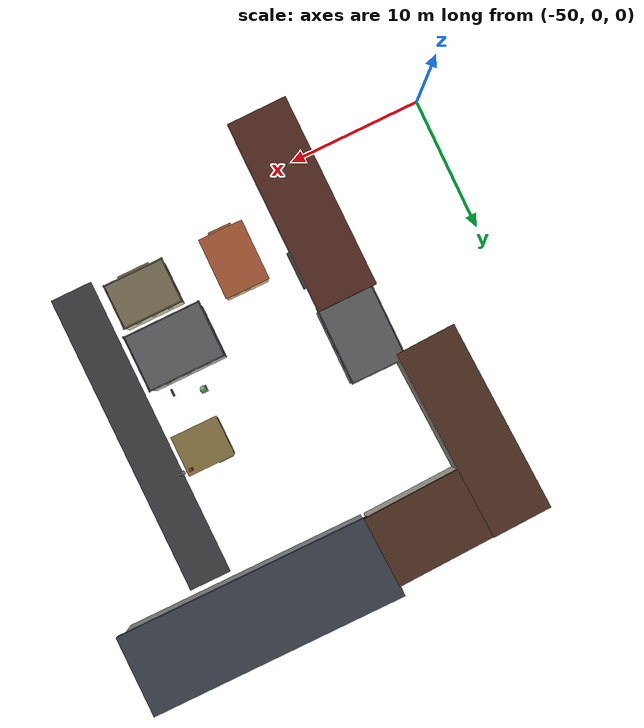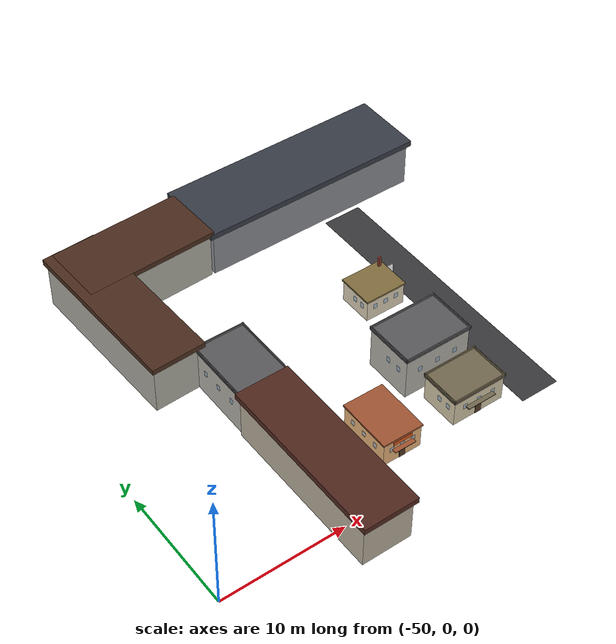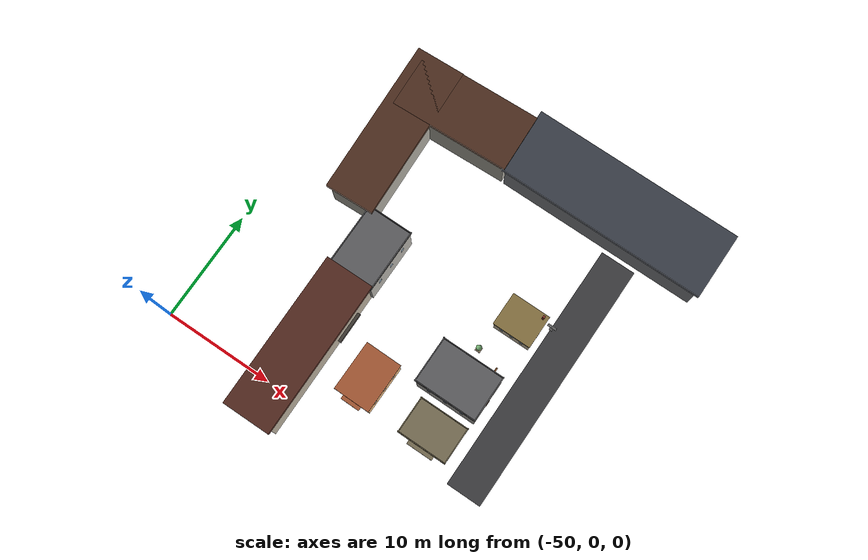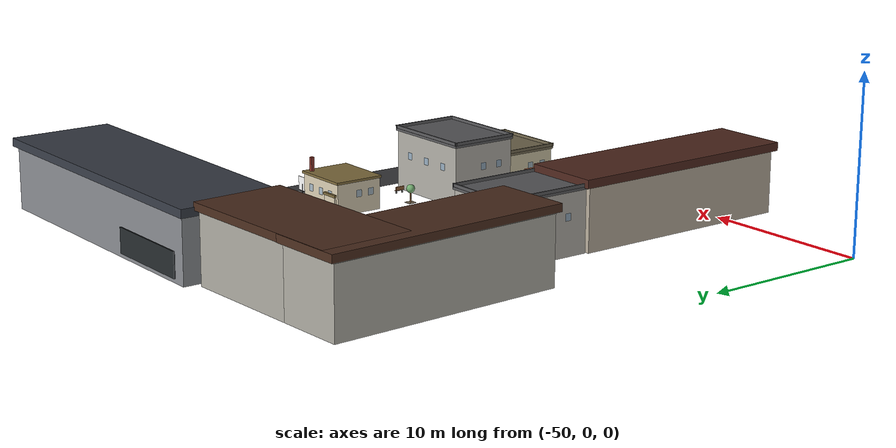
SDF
<sdf version="1.10">
 <world name="city">
  <model name="road_west_local">
   <static>true</static>
   <pose>-21.6000396728516 13.0629776000977 0 0 0 1.57080003571763</pose>
   <link name="link">
    <collision name="road_col">
     <pose>0 0 0.004 0 0 0</pose>
     <geometry><box><size>23.2 3.2 0.008</size></box></geometry>
    </collision>
    <visual name="road_vis">
     <pose>0 0 0.004 0 0 0</pose>
     <geometry><box><size>23.2 3.2 0.008</size></box></geometry>
     <material>
      <ambient>0.230000004 0.230000004 0.239999995 1</ambient>
      <diffuse>0.230000004 0.230000004 0.239999995 1</diffuse>
      <specular>0.0799999982 0.0799999982 0.0799999982 1</specular>
     </material>
    </visual>
    <inertial>
     <mass>1</mass>
     <inertia><ixx>1</ixx><ixy>0</ixy><ixz>0</ixz><iyy>1</iyy><iyz>0</iyz><izz>1</izz></inertia>
    </inertial>
   </link>
  </model>
  <model name="restaurant">
   <static>true</static>
   <pose>-33.1872924804687 4.80744400024414 0 0 0 1.56186993178606</pose>
   <link name="link">
    <collision name="body_col">
     <pose>0 0 1 0 0 0</pose>
     <geometry><box><size>4.4 3.2 2</size></box></geometry>
    </collision>
    <visual name="body_vis">
     <pose>0 0 1 0 0 0</pose>
     <geometry><box><size>4.4 3.2 2</size></box></geometry>
     <material>
      <ambient>0.899999976 0.699999988 0.479999989 1</ambient>
      <diffuse>0.899999976 0.699999988 0.479999989 1</diffuse>
      <specular>0.0799999982 0.0799999982 0.0799999982 1</specular>
     </material>
    </visual>
    <collision name="roof_col">
     <pose>0 0 2.07 0 0 0</pose>
     <geometry><box><size>4.56 3.36 0.14</size></box></geometry>
    </collision>
    <visual name="roof_vis">
     <pose>0 0 2.07 0 0 0</pose>
     <geometry><box><size>4.56 3.36 0.14</size></box></geometry>
     <material>
      <ambient>0.639999986 0.340000004 0.200000003 1</ambient>
      <diffuse>0.639999986 0.340000004 0.200000003 1</diffuse>
      <specular>0.0799999982 0.0799999982 0.0799999982 1</specular>
     </material>
    </visual>
    <visual name="door_vis">
     <pose>-2.216 0 0.48 0 0 0</pose>
     <geometry><box><size>0.04 0.52 0.96</size></box></geometry>
     <material>
      <ambient>0.319999993 0.219999999 0.159999996 1</ambient>
      <diffuse>0.319999993 0.219999999 0.159999996 1</diffuse>
      <specular>0.0799999982 0.0799999982 0.0799999982 1</specular>
     </material>
    </visual>
    <visual name="win_west_0">
     <pose>-2.212 -0.896 1.24 0 0 0</pose>
     <geometry><box><size>0.032 0.34 0.4</size></box></geometry>
     <material>
      <ambient>0.550000012 0.720000029 0.879999995 0.550000012</ambient>
      <diffuse>0.550000012 0.720000029 0.879999995 0.550000012</diffuse>
      <specular>0.0799999982 0.0799999982 0.0799999982 1</specular>
      <transparency>0.35</transparency>
     </material>
    </visual>
    <visual name="win_west_1">
     <pose>-2.212 0 1.24 0 0 0</pose>
     <geometry><box><size>0.032 0.34 0.4</size></box></geometry>
     <material>
      <ambient>0.550000012 0.720000029 0.879999995 0.550000012</ambient>
      <diffuse>0.550000012 0.720000029 0.879999995 0.550000012</diffuse>
      <specular>0.0799999982 0.0799999982 0.0799999982 1</specular>
      <transparency>0.35</transparency>
     </material>
    </visual>
    <visual name="win_west_2">
     <pose>-2.212 0.896 1.24 0 0 0</pose>
     <geometry><box><size>0.032 0.34 0.4</size></box></geometry>
     <material>
      <ambient>0.550000012 0.720000029 0.879999995 0.550000012</ambient>
      <diffuse>0.550000012 0.720000029 0.879999995 0.550000012</diffuse>
      <specular>0.0799999982 0.0799999982 0.0799999982 1</specular>
      <transparency>0.35</transparency>
     </material>
    </visual>
    <visual name="win_south_0">
     <pose>-1.232 -1.612 1.24 0 0 0</pose>
     <geometry><box><size>0.34 0.032 0.4</size></box></geometry>
     <material>
      <ambient>0.550000012 0.720000029 0.879999995 0.550000012</ambient>
      <diffuse>0.550000012 0.720000029 0.879999995 0.550000012</diffuse>
      <specular>0.0799999982 0.0799999982 0.0799999982 1</specular>
      <transparency>0.35</transparency>
     </material>
    </visual>
    <visual name="win_south_1">
     <pose>0 -1.612 1.24 0 0 0</pose>
     <geometry><box><size>0.34 0.032 0.4</size></box></geometry>
     <material>
      <ambient>0.550000012 0.720000029 0.879999995 0.550000012</ambient>
      <diffuse>0.550000012 0.720000029 0.879999995 0.550000012</diffuse>
      <specular>0.0799999982 0.0799999982 0.0799999982 1</specular>
      <transparency>0.35</transparency>
     </material>
    </visual>
    <visual name="win_south_2">
     <pose>1.232 -1.612 1.24 0 0 0</pose>
     <geometry><box><size>0.34 0.032 0.4</size></box></geometry>
     <material>
      <ambient>0.550000012 0.720000029 0.879999995 0.550000012</ambient>
      <diffuse>0.550000012 0.720000029 0.879999995 0.550000012</diffuse>
      <specular>0.0799999982 0.0799999982 0.0799999982 1</specular>
      <transparency>0.35</transparency>
     </material>
    </visual>
    <visual name="win_east_0">
     <pose>2.212 -0.896 1.24 0 0 0</pose>
     <geometry><box><size>0.032 0.34 0.4</size></box></geometry>
     <material>
      <ambient>0.550000012 0.720000029 0.879999995 0.550000012</ambient>
      <diffuse>0.550000012 0.720000029 0.879999995 0.550000012</diffuse>
      <specular>0.0799999982 0.0799999982 0.0799999982 1</specular>
      <transparency>0.35</transparency>
     </material>
    </visual>
    <visual name="win_east_1">
     <pose>2.212 0 1.24 0 0 0</pose>
     <geometry><box><size>0.032 0.34 0.4</size></box></geometry>
     <material>
      <ambient>0.550000012 0.720000029 0.879999995 0.550000012</ambient>
      <diffuse>0.550000012 0.720000029 0.879999995 0.550000012</diffuse>
      <specular>0.0799999982 0.0799999982 0.0799999982 1</specular>
      <transparency>0.35</transparency>
     </material>
    </visual>
    <visual name="win_north_0">
     <pose>-1.232 1.612 1.24 0 0 0</pose>
     <geometry><box><size>0.34 0.032 0.4</size></box></geometry>
     <material>
      <ambient>0.550000012 0.720000029 0.879999995 0.550000012</ambient>
      <diffuse>0.550000012 0.720000029 0.879999995 0.550000012</diffuse>
      <specular>0.0799999982 0.0799999982 0.0799999982 1</specular>
      <transparency>0.35</transparency>
     </material>
    </visual>
    <visual name="win_north_1">
     <pose>0 1.612 1.24 0 0 0</pose>
     <geometry><box><size>0.34 0.032 0.4</size></box></geometry>
     <material>
      <ambient>0.550000012 0.720000029 0.879999995 0.550000012</ambient>
      <diffuse>0.550000012 0.720000029 0.879999995 0.550000012</diffuse>
      <specular>0.0799999982 0.0799999982 0.0799999982 1</specular>
      <transparency>0.35</transparency>
     </material>
    </visual>
    <visual name="win_north_2">
     <pose>1.232 1.612 1.24 0 0 0</pose>
     <geometry><box><size>0.34 0.032 0.4</size></box></geometry>
     <material>
      <ambient>0.550000012 0.720000029 0.879999995 0.550000012</ambient>
      <diffuse>0.550000012 0.720000029 0.879999995 0.550000012</diffuse>
      <specular>0.0799999982 0.0799999982 0.0799999982 1</specular>
      <transparency>0.35</transparency>
     </material>
    </visual>
    <visual name="awning">
     <pose>-2.42 0 1.24 0 0 0</pose>
     <geometry><box><size>0.36 1.76 0.064</size></box></geometry>
     <material>
      <ambient>0.639999986 0.340000004 0.200000003 1</ambient>
      <diffuse>0.639999986 0.340000004 0.200000003 1</diffuse>
      <specular>0.0799999982 0.0799999982 0.0799999982 1</specular>
     </material>
    </visual>
    <visual name="sign_vis">
     <pose>-2.228 0 1.7 0 0 0</pose>
     <geometry><box><size>0.048 1.6 0.32</size></box></geometry>
     <material>
      <ambient>0.860000014 0.340000004 0.119999997 1</ambient>
      <diffuse>0.860000014 0.340000004 0.119999997 1</diffuse>
      <specular>0.0799999982 0.0799999982 0.0799999982 1</specular>
     </material>
    </visual>
    <inertial>
     <mass>1</mass>
     <inertia><ixx>1</ixx><ixy>0</ixy><ixz>0</ixz><iyy>1</iyy><iyz>0</iyz><izz>1</izz></inertia>
    </inertial>
   </link>
  </model>
  <model name="house_1">
   <static>true</static>
   <pose>-25.5138168334961 15.647639465332 0 0 0 0</pose>
   <link name="link">
    <collision name="body_col">
     <pose>0 0 0.92 0 0 0</pose>
     <geometry><box><size>3.4 2.88 1.84</size></box></geometry>
    </collision>
    <visual name="body_vis">
     <pose>0 0 0.92 0 0 0</pose>
     <geometry><box><size>3.4 2.88 1.84</size></box></geometry>
     <material>
      <ambient>0.860000014 0.810000002 0.709999979 1</ambient>
      <diffuse>0.860000014 0.810000002 0.709999979 1</diffuse>
      <specular>0.0799999982 0.0799999982 0.0799999982 1</specular>
     </material>
    </visual>
    <collision name="roof_col">
     <pose>0 0 1.91 0 0 0</pose>
     <geometry><box><size>3.56 3.04 0.14</size></box></geometry>
    </collision>
    <visual name="roof_vis">
     <pose>0 0 1.91 0 0 0</pose>
     <geometry><box><size>3.56 3.04 0.14</size></box></geometry>
     <material>
      <ambient>0.519999981 0.439999998 0.25 1</ambient>
      <diffuse>0.519999981 0.439999998 0.25 1</diffuse>
      <specular>0.0799999982 0.0799999982 0.0799999982 1</specular>
     </material>
    </visual>
    <visual name="door_vis">
     <pose>1.716 0 0.48 0 0 0</pose>
     <geometry><box><size>0.04 0.52 0.96</size></box></geometry>
     <material>
      <ambient>0.319999993 0.219999999 0.159999996 1</ambient>
      <diffuse>0.319999993 0.219999999 0.159999996 1</diffuse>
      <specular>0.0799999982 0.0799999982 0.0799999982 1</specular>
     </material>
    </visual>
    <visual name="win_east_0">
     <pose>1.712 -0.8064 1.1408 0 0 0</pose>
     <geometry><box><size>0.032 0.34 0.4</size></box></geometry>
     <material>
      <ambient>0.550000012 0.720000029 0.879999995 0.550000012</ambient>
      <diffuse>0.550000012 0.720000029 0.879999995 0.550000012</diffuse>
      <specular>0.0799999982 0.0799999982 0.0799999982 1</specular>
      <transparency>0.35</transparency>
     </material>
    </visual>
    <visual name="win_east_1">
     <pose>1.712 0 1.1408 0 0 0</pose>
     <geometry><box><size>0.032 0.34 0.4</size></box></geometry>
     <material>
      <ambient>0.550000012 0.720000029 0.879999995 0.550000012</ambient>
      <diffuse>0.550000012 0.720000029 0.879999995 0.550000012</diffuse>
      <specular>0.0799999982 0.0799999982 0.0799999982 1</specular>
      <transparency>0.35</transparency>
     </material>
    </visual>
    <visual name="win_east_2">
     <pose>1.712 0.8064 1.1408 0 0 0</pose>
     <geometry><box><size>0.032 0.34 0.4</size></box></geometry>
     <material>
      <ambient>0.550000012 0.720000029 0.879999995 0.550000012</ambient>
      <diffuse>0.550000012 0.720000029 0.879999995 0.550000012</diffuse>
      <specular>0.0799999982 0.0799999982 0.0799999982 1</specular>
      <transparency>0.35</transparency>
     </material>
    </visual>
    <visual name="win_south_0">
     <pose>-0.952 -1.452 1.1408 0 0 0</pose>
     <geometry><box><size>0.34 0.032 0.4</size></box></geometry>
     <material>
      <ambient>0.550000012 0.720000029 0.879999995 0.550000012</ambient>
      <diffuse>0.550000012 0.720000029 0.879999995 0.550000012</diffuse>
      <specular>0.0799999982 0.0799999982 0.0799999982 1</specular>
      <transparency>0.35</transparency>
     </material>
    </visual>
    <visual name="win_south_1">
     <pose>0 -1.452 1.1408 0 0 0</pose>
     <geometry><box><size>0.34 0.032 0.4</size></box></geometry>
     <material>
      <ambient>0.550000012 0.720000029 0.879999995 0.550000012</ambient>
      <diffuse>0.550000012 0.720000029 0.879999995 0.550000012</diffuse>
      <specular>0.0799999982 0.0799999982 0.0799999982 1</specular>
      <transparency>0.35</transparency>
     </material>
    </visual>
    <visual name="win_south_2">
     <pose>0.952 -1.452 1.1408 0 0 0</pose>
     <geometry><box><size>0.34 0.032 0.4</size></box></geometry>
     <material>
      <ambient>0.550000012 0.720000029 0.879999995 0.550000012</ambient>
      <diffuse>0.550000012 0.720000029 0.879999995 0.550000012</diffuse>
      <specular>0.0799999982 0.0799999982 0.0799999982 1</specular>
      <transparency>0.35</transparency>
     </material>
    </visual>
    <visual name="win_west_0">
     <pose>-1.712 -0.8064 1.1408 0 0 0</pose>
     <geometry><box><size>0.032 0.34 0.4</size></box></geometry>
     <material>
      <ambient>0.550000012 0.720000029 0.879999995 0.550000012</ambient>
      <diffuse>0.550000012 0.720000029 0.879999995 0.550000012</diffuse>
      <specular>0.0799999982 0.0799999982 0.0799999982 1</specular>
      <transparency>0.35</transparency>
     </material>
    </visual>
    <visual name="win_west_1">
     <pose>-1.712 0 1.1408 0 0 0</pose>
     <geometry><box><size>0.032 0.34 0.4</size></box></geometry>
     <material>
      <ambient>0.550000012 0.720000029 0.879999995 0.550000012</ambient>
      <diffuse>0.550000012 0.720000029 0.879999995 0.550000012</diffuse>
      <specular>0.0799999982 0.0799999982 0.0799999982 1</specular>
      <transparency>0.35</transparency>
     </material>
    </visual>
    <visual name="win_north_0">
     <pose>-0.952 1.452 1.1408 0 0 0</pose>
     <geometry><box><size>0.34 0.032 0.4</size></box></geometry>
     <material>
      <ambient>0.550000012 0.720000029 0.879999995 0.550000012</ambient>
      <diffuse>0.550000012 0.720000029 0.879999995 0.550000012</diffuse>
      <specular>0.0799999982 0.0799999982 0.0799999982 1</specular>
      <transparency>0.35</transparency>
     </material>
    </visual>
    <visual name="win_north_1">
     <pose>0 1.452 1.1408 0 0 0</pose>
     <geometry><box><size>0.34 0.032 0.4</size></box></geometry>
     <material>
      <ambient>0.550000012 0.720000029 0.879999995 0.550000012</ambient>
      <diffuse>0.550000012 0.720000029 0.879999995 0.550000012</diffuse>
      <specular>0.0799999982 0.0799999982 0.0799999982 1</specular>
      <transparency>0.35</transparency>
     </material>
    </visual>
    <visual name="win_north_2">
     <pose>0.952 1.452 1.1408 0 0 0</pose>
     <geometry><box><size>0.34 0.032 0.4</size></box></geometry>
     <material>
      <ambient>0.550000012 0.720000029 0.879999995 0.550000012</ambient>
      <diffuse>0.550000012 0.720000029 0.879999995 0.550000012</diffuse>
      <specular>0.0799999982 0.0799999982 0.0799999982 1</specular>
      <transparency>0.35</transparency>
     </material>
    </visual>
    <collision name="annex_col">
     <pose>-1.04 1.12 0.54 0 0 0</pose>
     <geometry><box><size>1 0.88 1.08</size></box></geometry>
    </collision>
    <visual name="annex_vis">
     <pose>-1.04 1.12 0.54 0 0 0</pose>
     <geometry><box><size>1 0.88 1.08</size></box></geometry>
     <material>
      <ambient>0.860000014 0.810000002 0.709999979 1</ambient>
      <diffuse>0.860000014 0.810000002 0.709999979 1</diffuse>
      <specular>0.0799999982 0.0799999982 0.0799999982 1</specular>
     </material>
    </visual>
    <visual name="annex_roof">
     <pose>-1.04 1.12 1.15 0 0 0</pose>
     <geometry><box><size>1.08 0.96 0.14</size></box></geometry>
     <material>
      <ambient>0.519999981 0.439999998 0.25 1</ambient>
      <diffuse>0.519999981 0.439999998 0.25 1</diffuse>
      <specular>0.0799999982 0.0799999982 0.0799999982 1</specular>
     </material>
    </visual>
    <visual name="chimney">
     <pose>1.38 1.12 2.32 0 0 0</pose>
     <geometry><box><size>0.2 0.2 0.96</size></box></geometry>
     <material>
      <ambient>0.550000012 0.219999999 0.180000007 1</ambient>
      <diffuse>0.550000012 0.219999999 0.180000007 1</diffuse>
      <specular>0.0799999982 0.0799999982 0.0799999982 1</specular>
     </material>
    </visual>
    <inertial>
     <mass>1</mass>
     <inertia><ixx>1</ixx><ixy>0</ixy><ixz>0</ixz><iyy>1</iyy><iyz>0</iyz><izz>1</izz></inertia>
    </inertial>
   </link>
  </model>
  <model name="tree_10">
   <static>true</static>
   <pose>-27.2 12 0 0 0 0</pose>
   <link name="link">
    <collision name="soil_col">
     <pose>0 0 0.012 0 0 0</pose>
     <geometry><box><size>0.48 0.48 0.024</size></box></geometry>
    </collision>
    <visual name="soil_vis">
     <pose>0 0 0.012 0 0 0</pose>
     <geometry><box><size>0.48 0.48 0.024</size></box></geometry>
     <material>
      <ambient>0.5 0.439999998 0.349999994 1</ambient>
      <diffuse>0.5 0.439999998 0.349999994 1</diffuse>
      <specular>0.0799999982 0.0799999982 0.0799999982 1</specular>
     </material>
    </visual>
    <collision name="trunk_col">
     <pose>0 0 0.36 0 0 0</pose>
     <geometry><cylinder><radius>0.04</radius><length>0.72</length></cylinder></geometry>
    </collision>
    <visual name="trunk_vis">
     <pose>0 0 0.36 0 0 0</pose>
     <geometry><cylinder><radius>0.04</radius><length>0.72</length></cylinder></geometry>
     <material>
      <ambient>0.449999988 0.310000002 0.180000007 1</ambient>
      <diffuse>0.449999988 0.310000002 0.180000007 1</diffuse>
      <specular>0.0799999982 0.0799999982 0.0799999982 1</specular>
     </material>
    </visual>
    <visual name="crown_vis">
     <pose>0 0 0.84 0 0 0</pose>
     <geometry><sphere><radius>0.248</radius></sphere></geometry>
     <material>
      <ambient>0.449999988 0.680000007 0.439999998 1</ambient>
      <diffuse>0.449999988 0.680000007 0.439999998 1</diffuse>
      <specular>0.0799999982 0.0799999982 0.0799999982 1</specular>
     </material>
    </visual>
    <inertial>
     <mass>1</mass>
     <inertia><ixx>1</ixx><ixy>0</ixy><ixz>0</ixz><iyy>1</iyy><iyz>0</iyz><izz>1</izz></inertia>
    </inertial>
   </link>
  </model>
  <model name="bench_0">
   <static>true</static>
   <pose>-25.0662399291992 11.2572799682617 0 0 0 -1.57372848408473</pose>
   <link name="link">
    <visual name="seat">
     <pose>0 0 0.18 0 0 0</pose>
     <geometry><box><size>0.56 0.14 0.032</size></box></geometry>
     <material>
      <ambient>0.550000012 0.349999994 0.200000003 1</ambient>
      <diffuse>0.550000012 0.349999994 0.200000003 1</diffuse>
      <specular>0.0799999982 0.0799999982 0.0799999982 1</specular>
     </material>
    </visual>
    <visual name="back">
     <pose>0 -0.048 0.3 0 0 0</pose>
     <geometry><box><size>0.56 0.032 0.22</size></box></geometry>
     <material>
      <ambient>0.550000012 0.349999994 0.200000003 1</ambient>
      <diffuse>0.550000012 0.349999994 0.200000003 1</diffuse>
      <specular>0.0799999982 0.0799999982 0.0799999982 1</specular>
     </material>
    </visual>
    <visual name="leg1">
     <pose>-0.22 0 0.088 0 0 0</pose>
     <geometry><box><size>0.032 0.112 0.176</size></box></geometry>
     <material>
      <ambient>0.180000007 0.180000007 0.180000007 1</ambient>
      <diffuse>0.180000007 0.180000007 0.180000007 1</diffuse>
      <specular>0.0799999982 0.0799999982 0.0799999982 1</specular>
     </material>
    </visual>
    <visual name="leg2">
     <pose>0.22 0 0.088 0 0 0</pose>
     <geometry><box><size>0.032 0.112 0.176</size></box></geometry>
     <material>
      <ambient>0.180000007 0.180000007 0.180000007 1</ambient>
      <diffuse>0.180000007 0.180000007 0.180000007 1</diffuse>
      <specular>0.0799999982 0.0799999982 0.0799999982 1</specular>
     </material>
    </visual>
    <inertial>
     <mass>1</mass>
     <inertia><ixx>1</ixx><ixy>0</ixy><ixz>0</ixz><iyy>1</iyy><iyz>0</iyz><izz>1</izz></inertia>
    </inertial>
   </link>
  </model>
  <model name="house_1_qr_sign">
   <static>true</static>
   <pose>-23.1787796020508 16.7860000610352 0 0 0 0</pose>
   <link name="link">
    <collision name="post_col">
     <pose>0 0 0.5 0 0 0</pose>
     <geometry><box><size>0.056 0.056 1</size></box></geometry>
    </collision>
    <visual name="post_vis">
     <pose>0 0 0.5 0 0 0</pose>
     <geometry><box><size>0.056 0.056 1</size></box></geometry>
     <material>
      <ambient>0.239999995 0.239999995 0.239999995 1</ambient>
      <diffuse>0.239999995 0.239999995 0.239999995 1</diffuse>
      <specular>0.0799999982 0.0799999982 0.0799999982 1</specular>
     </material>
    </visual>
    <collision name="base_col">
     <pose>0 0 0.024 0 0 0</pose>
     <geometry><box><size>0.3 0.3 0.048</size></box></geometry>
    </collision>
    <visual name="base_vis">
     <pose>0 0 0.024 0 0 0</pose>
     <geometry><box><size>0.3 0.3 0.048</size></box></geometry>
     <material>
      <ambient>0.379999995 0.379999995 0.379999995 1</ambient>
      <diffuse>0.379999995 0.379999995 0.379999995 1</diffuse>
      <specular>0.0799999982 0.0799999982 0.0799999982 1</specular>
     </material>
    </visual>
    <visual name="back_vis">
     <pose>0 0 0.48 0 0 0</pose>
     <geometry><box><size>0.86 0.024 0.072</size></box></geometry>
     <material>
      <ambient>0.920000017 0.920000017 0.920000017 1</ambient>
      <diffuse>0.920000017 0.920000017 0.920000017 1</diffuse>
      <specular>0.0500000007 0.0500000007 0.0500000007 1</specular>
     </material>
    </visual>
    <visual name="qr_vis">
     <pose>0 0 1.02 0 0 0</pose>
     <geometry><box><size>0.8 0.04 0.8</size></box></geometry>
     <material>
      <ambient>1 1 1 1</ambient>
      <diffuse>1 1 1 1</diffuse>
      <specular>0.0500000007 0.0500000007 0.0500000007 1</specular>
      <pbr><metal><metalness>0.0</metalness><roughness>1.0</roughness></metal></pbr>
     </material>
    </visual>
    <inertial>
     <mass>1</mass>
     <inertia><ixx>1</ixx><ixy>0</ixy><ixz>0</ixz><iyy>1</iyy><iyz>0</iyz><izz>1</izz></inertia>
    </inertial>
   </link>
  </model>
  <model name="gallery_long_warehouse_1">
   <static>true</static>
   <pose>-24.2321104342787 27.8338602417321 0 0 0 0</pose>
   <link name="body">
    <collision name="collision">
     <pose>0 0 1.8 0 0 0</pose>
     <geometry><box><size>18.4 5.6 3.6</size></box></geometry>
    </collision>
    <visual name="main">
     <pose>0 0 1.8 0 0 0</pose>
     <geometry><box><size>18.4 5.6 3.6</size></box></geometry>
     <material>
      <ambient>0.540000021 0.550000012 0.569999993 1</ambient>
      <diffuse>0.540000021 0.550000012 0.569999993 1</diffuse>
      <specular>0.0500000007 0.0500000007 0.0500000007 1</specular>
     </material>
    </visual>
    <visual name="roof">
     <pose>0 0 3.88 0 0 0</pose>
     <geometry><box><size>19 6 0.48</size></box></geometry>
     <material>
      <ambient>0.219999999 0.239999995 0.280000001 1</ambient>
      <diffuse>0.219999999 0.239999995 0.280000001 1</diffuse>
      <specular>0.0399999991 0.0399999991 0.0399999991 1</specular>
     </material>
    </visual>
    <visual name="loading_bays">
     <pose>-5.6 2.84 0.96 0 0 0</pose>
     <geometry><box><size>5.6 0.08 1.44</size></box></geometry>
     <material>
      <ambient>0.150000006 0.170000002 0.180000007 1</ambient>
      <diffuse>0.150000006 0.170000002 0.180000007 1</diffuse>
      <specular>0.0199999996 0.0199999996 0.0199999996 1</specular>
     </material>
    </visual>
    <inertial>
     <mass>1</mass>
     <inertia><ixx>1</ixx><ixy>0</ixy><ixz>0</ixz><iyy>1</iyy><iyz>0</iyz><izz>1</izz></inertia>
    </inertial>
   </link>
  </model>
  <model name="gallery_long_residential_block_2">
   <static>true</static>
   <pose>-38.9889166177687 3.73044146288243 0 0 0 -1.56696998067439</pose>
   <link name="body">
    <collision name="collision">
     <pose>0 0 1.8 0 0 0</pose>
     <geometry><box><size>13.6 4 3.6</size></box></geometry>
    </collision>
    <visual name="main">
     <pose>0 0 1.8 0 0 0</pose>
     <geometry><box><size>13.6 4 3.6</size></box></geometry>
     <material>
      <ambient>0.720000029 0.680000007 0.610000014 1</ambient>
      <diffuse>0.720000029 0.680000007 0.610000014 1</diffuse>
      <specular>0.0799999982 0.0799999982 0.0799999982 1</specular>
     </material>
    </visual>
    <visual name="roof">
     <pose>0 0 3.84 0 0 0</pose>
     <geometry><box><size>14.2 4.4 0.48</size></box></geometry>
     <material>
      <ambient>0.319999993 0.159999996 0.119999997 1</ambient>
      <diffuse>0.319999993 0.159999996 0.119999997 1</diffuse>
      <specular>0.0500000007 0.0500000007 0.0500000007 1</specular>
     </material>
    </visual>
    <visual name="canopy">
     <pose>-3.6 2.12 1.16 0 0 0</pose>
     <geometry><box><size>2.8 0.28 0.44</size></box></geometry>
     <material>
      <ambient>0.239999995 0.219999999 0.200000003 1</ambient>
      <diffuse>0.239999995 0.219999999 0.200000003 1</diffuse>
      <specular>0.0299999993 0.0299999993 0.0299999993 1</specular>
     </material>
    </visual>
    <inertial>
     <mass>1</mass>
     <inertia><ixx>1</ixx><ixy>0</ixy><ixz>0</ixz><iyy>1</iyy><iyz>0</iyz><izz>1</izz></inertia>
    </inertial>
   </link>
  </model>
  <model name="gallery_long_l_block_2">
   <static>true</static>
   <pose>-42.7779998779297 22.7041595458984 0 0 0 1.6093498454727</pose>
   <link name="body">
    <collision name="leg_a_collision">
     <pose>0 0 1.92 0 0 0</pose>
     <geometry><box><size>13.6 4 3.84</size></box></geometry>
    </collision>
    <collision name="leg_b_collision">
     <pose>4.4 -4 1.92 0 0 0</pose>
     <geometry><box><size>4.8 10.4 3.84</size></box></geometry>
    </collision>
    <visual name="leg_a_visual">
     <pose>0 0 1.92 0 0 0</pose>
     <geometry><box><size>13.6 4 3.84</size></box></geometry>
     <material>
      <ambient>0.680000007 0.670000017 0.629999995 1</ambient>
      <diffuse>0.680000007 0.670000017 0.629999995 1</diffuse>
      <specular>0.0500000007 0.0500000007 0.0500000007 1</specular>
     </material>
    </visual>
    <visual name="leg_b_visual">
     <pose>4.4 -4 1.92 0 0 0</pose>
     <geometry><box><size>4.8 10.4 3.84</size></box></geometry>
     <material>
      <ambient>0.680000007 0.670000017 0.629999995 1</ambient>
      <diffuse>0.680000007 0.670000017 0.629999995 1</diffuse>
      <specular>0.0500000007 0.0500000007 0.0500000007 1</specular>
     </material>
    </visual>
    <visual name="roof_a">
     <pose>0 0 4.16 0 0 0</pose>
     <geometry><box><size>14.08 4.4 0.44</size></box></geometry>
     <material>
      <ambient>0.300000012 0.180000007 0.119999997 1</ambient>
      <diffuse>0.300000012 0.180000007 0.119999997 1</diffuse>
      <specular>0.0399999991 0.0399999991 0.0399999991 1</specular>
     </material>
    </visual>
    <visual name="roof_b">
     <pose>4.4 -4 4.16 0 0 0</pose>
     <geometry><box><size>5.2 10.8 0.44</size></box></geometry>
     <material>
      <ambient>0.300000012 0.180000007 0.119999997 1</ambient>
      <diffuse>0.300000012 0.180000007 0.119999997 1</diffuse>
      <specular>0.0399999991 0.0399999991 0.0399999991 1</specular>
     </material>
    </visual>
    <inertial>
     <mass>1</mass>
     <inertia><ixx>1</ixx><ixy>0</ixy><ixz>0</ixz><iyy>1</iyy><iyz>0</iyz><izz>1</izz></inertia>
    </inertial>
   </link>
  </model>
  <model name="apartment_west_2">
   <static>true</static>
   <pose>-38.8592778436666 13.4256162676047 0 0 0 -1.57282005024048</pose>
   <link name="link">
    <collision name="body_col">
     <pose>0 0 1.76 0 0 0</pose>
     <geometry><box><size>5.6 4 3.52</size></box></geometry>
    </collision>
    <visual name="body_vis">
     <pose>0 0 1.76 0 0 0</pose>
     <geometry><box><size>5.6 4 3.52</size></box></geometry>
     <material>
      <ambient>0.699999988 0.689999998 0.660000026 1</ambient>
      <diffuse>0.699999988 0.689999998 0.660000026 1</diffuse>
      <specular>0.0799999982 0.0799999982 0.0799999982 1</specular>
     </material>
    </visual>
    <collision name="roof_col">
     <pose>0 0 3.59 0 0 0</pose>
     <geometry><box><size>5.76 4.16 0.14</size></box></geometry>
    </collision>
    <visual name="roof_vis">
     <pose>0 0 3.59 0 0 0</pose>
     <geometry><box><size>5.76 4.16 0.14</size></box></geometry>
     <material>
      <ambient>0.360000014 0.360000014 0.370000005 1</ambient>
      <diffuse>0.360000014 0.360000014 0.370000005 1</diffuse>
      <specular>0.0799999982 0.0799999982 0.0799999982 1</specular>
     </material>
    </visual>
    <visual name="p1_vis">
     <pose>0 2.036 3.748 0 0 0</pose>
     <geometry><box><size>5.82 0.072 0.18</size></box></geometry>
     <material>
      <ambient>0.360000014 0.360000014 0.370000005 1</ambient>
      <diffuse>0.360000014 0.360000014 0.370000005 1</diffuse>
      <specular>0.0799999982 0.0799999982 0.0799999982 1</specular>
     </material>
    </visual>
    <visual name="p2_vis">
     <pose>0 -2.036 3.748 0 0 0</pose>
     <geometry><box><size>5.82 0.072 0.18</size></box></geometry>
     <material>
      <ambient>0.360000014 0.360000014 0.370000005 1</ambient>
      <diffuse>0.360000014 0.360000014 0.370000005 1</diffuse>
      <specular>0.0799999982 0.0799999982 0.0799999982 1</specular>
     </material>
    </visual>
    <visual name="p3_vis">
     <pose>2.836 0 3.748 0 0 0</pose>
     <geometry><box><size>0.072 4.22 0.18</size></box></geometry>
     <material>
      <ambient>0.360000014 0.360000014 0.370000005 1</ambient>
      <diffuse>0.360000014 0.360000014 0.370000005 1</diffuse>
      <specular>0.0799999982 0.0799999982 0.0799999982 1</specular>
     </material>
    </visual>
    <visual name="p4_vis">
     <pose>-2.836 0 3.748 0 0 0</pose>
     <geometry><box><size>0.072 4.22 0.18</size></box></geometry>
     <material>
      <ambient>0.360000014 0.360000014 0.370000005 1</ambient>
      <diffuse>0.360000014 0.360000014 0.370000005 1</diffuse>
      <specular>0.0799999982 0.0799999982 0.0799999982 1</specular>
     </material>
    </visual>
    <visual name="door_vis">
     <pose>2.816 0 0.48 0 0 0</pose>
     <geometry><box><size>0.04 0.52 0.96</size></box></geometry>
     <material>
      <ambient>0.319999993 0.219999999 0.159999996 1</ambient>
      <diffuse>0.319999993 0.219999999 0.159999996 1</diffuse>
      <specular>0.0799999982 0.0799999982 0.0799999982 1</specular>
     </material>
    </visual>
    <visual name="win_east_0">
     <pose>2.812 -1.12 2.1824 0 0 0</pose>
     <geometry><box><size>0.032 0.34 0.4</size></box></geometry>
     <material>
      <ambient>0.550000012 0.720000029 0.879999995 0.550000012</ambient>
      <diffuse>0.550000012 0.720000029 0.879999995 0.550000012</diffuse>
      <specular>0.0799999982 0.0799999982 0.0799999982 1</specular>
      <transparency>0.35</transparency>
     </material>
    </visual>
    <visual name="win_east_1">
     <pose>2.812 0 2.1824 0 0 0</pose>
     <geometry><box><size>0.032 0.34 0.4</size></box></geometry>
     <material>
      <ambient>0.550000012 0.720000029 0.879999995 0.550000012</ambient>
      <diffuse>0.550000012 0.720000029 0.879999995 0.550000012</diffuse>
      <specular>0.0799999982 0.0799999982 0.0799999982 1</specular>
      <transparency>0.35</transparency>
     </material>
    </visual>
    <visual name="win_east_2">
     <pose>2.812 1.12 2.1824 0 0 0</pose>
     <geometry><box><size>0.032 0.34 0.4</size></box></geometry>
     <material>
      <ambient>0.550000012 0.720000029 0.879999995 0.550000012</ambient>
      <diffuse>0.550000012 0.720000029 0.879999995 0.550000012</diffuse>
      <specular>0.0799999982 0.0799999982 0.0799999982 1</specular>
      <transparency>0.35</transparency>
     </material>
    </visual>
    <visual name="win_south_0">
     <pose>-1.568 -2.012 2.1824 0 0 0</pose>
     <geometry><box><size>0.34 0.032 0.4</size></box></geometry>
     <material>
      <ambient>0.550000012 0.720000029 0.879999995 0.550000012</ambient>
      <diffuse>0.550000012 0.720000029 0.879999995 0.550000012</diffuse>
      <specular>0.0799999982 0.0799999982 0.0799999982 1</specular>
      <transparency>0.35</transparency>
     </material>
    </visual>
    <visual name="win_south_1">
     <pose>0 -2.012 2.1824 0 0 0</pose>
     <geometry><box><size>0.34 0.032 0.4</size></box></geometry>
     <material>
      <ambient>0.550000012 0.720000029 0.879999995 0.550000012</ambient>
      <diffuse>0.550000012 0.720000029 0.879999995 0.550000012</diffuse>
      <specular>0.0799999982 0.0799999982 0.0799999982 1</specular>
      <transparency>0.35</transparency>
     </material>
    </visual>
    <visual name="win_south_2">
     <pose>1.568 -2.012 2.1824 0 0 0</pose>
     <geometry><box><size>0.34 0.032 0.4</size></box></geometry>
     <material>
      <ambient>0.550000012 0.720000029 0.879999995 0.550000012</ambient>
      <diffuse>0.550000012 0.720000029 0.879999995 0.550000012</diffuse>
      <specular>0.0799999982 0.0799999982 0.0799999982 1</specular>
      <transparency>0.35</transparency>
     </material>
    </visual>
    <visual name="win_west_0">
     <pose>-2.812 -1.12 2.1824 0 0 0</pose>
     <geometry><box><size>0.032 0.34 0.4</size></box></geometry>
     <material>
      <ambient>0.550000012 0.720000029 0.879999995 0.550000012</ambient>
      <diffuse>0.550000012 0.720000029 0.879999995 0.550000012</diffuse>
      <specular>0.0799999982 0.0799999982 0.0799999982 1</specular>
      <transparency>0.35</transparency>
     </material>
    </visual>
    <visual name="win_west_1">
     <pose>-2.812 0 2.1824 0 0 0</pose>
     <geometry><box><size>0.032 0.34 0.4</size></box></geometry>
     <material>
      <ambient>0.550000012 0.720000029 0.879999995 0.550000012</ambient>
      <diffuse>0.550000012 0.720000029 0.879999995 0.550000012</diffuse>
      <specular>0.0799999982 0.0799999982 0.0799999982 1</specular>
      <transparency>0.35</transparency>
     </material>
    </visual>
    <visual name="win_north_0">
     <pose>-1.568 2.012 2.1824 0 0 0</pose>
     <geometry><box><size>0.34 0.032 0.4</size></box></geometry>
     <material>
      <ambient>0.550000012 0.720000029 0.879999995 0.550000012</ambient>
      <diffuse>0.550000012 0.720000029 0.879999995 0.550000012</diffuse>
      <specular>0.0799999982 0.0799999982 0.0799999982 1</specular>
      <transparency>0.35</transparency>
     </material>
    </visual>
    <visual name="win_north_1">
     <pose>0 2.012 2.1824 0 0 0</pose>
     <geometry><box><size>0.34 0.032 0.4</size></box></geometry>
     <material>
      <ambient>0.550000012 0.720000029 0.879999995 0.550000012</ambient>
      <diffuse>0.550000012 0.720000029 0.879999995 0.550000012</diffuse>
      <specular>0.0799999982 0.0799999982 0.0799999982 1</specular>
      <transparency>0.35</transparency>
     </material>
    </visual>
    <visual name="win_north_2">
     <pose>1.568 2.012 2.1824 0 0 0</pose>
     <geometry><box><size>0.34 0.032 0.4</size></box></geometry>
     <material>
      <ambient>0.550000012 0.720000029 0.879999995 0.550000012</ambient>
      <diffuse>0.550000012 0.720000029 0.879999995 0.550000012</diffuse>
      <specular>0.0799999982 0.0799999982 0.0799999982 1</specular>
      <transparency>0.35</transparency>
     </material>
    </visual>
    <inertial>
     <mass>1</mass>
     <inertia><ixx>1</ixx><ixy>0</ixy><ixz>0</ixz><iyy>1</iyy><iyz>0</iyz><izz>1</izz></inertia>
    </inertial>
   </link>
  </model>
  <model name="north_shop_1_1">
   <static>true</static>
   <pose>-26.4176424627562 4.23212179941061 0 0 0 0</pose>
   <link name="link">
    <collision name="body_col">
     <pose>0 0 1.08 0 0 0</pose>
     <geometry><box><size>4.4 3.2 2.16</size></box></geometry>
    </collision>
    <visual name="body_vis">
     <pose>0 0 1.08 0 0 0</pose>
     <geometry><box><size>4.4 3.2 2.16</size></box></geometry>
     <material>
      <ambient>0.819999993 0.779999971 0.660000026 1</ambient>
      <diffuse>0.819999993 0.779999971 0.660000026 1</diffuse>
      <specular>0.0799999982 0.0799999982 0.0799999982 1</specular>
     </material>
    </visual>
    <collision name="roof_col">
     <pose>0 0 2.23 0 0 0</pose>
     <geometry><box><size>4.56 3.36 0.14</size></box></geometry>
    </collision>
    <visual name="roof_vis">
     <pose>0 0 2.23 0 0 0</pose>
     <geometry><box><size>4.56 3.36 0.14</size></box></geometry>
     <material>
      <ambient>0.460000008 0.419999987 0.319999993 1</ambient>
      <diffuse>0.460000008 0.419999987 0.319999993 1</diffuse>
      <specular>0.0799999982 0.0799999982 0.0799999982 1</specular>
     </material>
    </visual>
    <visual name="p1_vis">
     <pose>0 1.636 2.388 0 0 0</pose>
     <geometry><box><size>4.62 0.072 0.18</size></box></geometry>
     <material>
      <ambient>0.460000008 0.419999987 0.319999993 1</ambient>
      <diffuse>0.460000008 0.419999987 0.319999993 1</diffuse>
      <specular>0.0799999982 0.0799999982 0.0799999982 1</specular>
     </material>
    </visual>
    <visual name="p2_vis">
     <pose>0 -1.636 2.388 0 0 0</pose>
     <geometry><box><size>4.62 0.072 0.18</size></box></geometry>
     <material>
      <ambient>0.460000008 0.419999987 0.319999993 1</ambient>
      <diffuse>0.460000008 0.419999987 0.319999993 1</diffuse>
      <specular>0.0799999982 0.0799999982 0.0799999982 1</specular>
     </material>
    </visual>
    <visual name="p3_vis">
     <pose>2.236 0 2.388 0 0 0</pose>
     <geometry><box><size>0.072 3.42 0.18</size></box></geometry>
     <material>
      <ambient>0.460000008 0.419999987 0.319999993 1</ambient>
      <diffuse>0.460000008 0.419999987 0.319999993 1</diffuse>
      <specular>0.0799999982 0.0799999982 0.0799999982 1</specular>
     </material>
    </visual>
    <visual name="p4_vis">
     <pose>-2.236 0 2.388 0 0 0</pose>
     <geometry><box><size>0.072 3.42 0.18</size></box></geometry>
     <material>
      <ambient>0.460000008 0.419999987 0.319999993 1</ambient>
      <diffuse>0.460000008 0.419999987 0.319999993 1</diffuse>
      <specular>0.0799999982 0.0799999982 0.0799999982 1</specular>
     </material>
    </visual>
    <visual name="door_vis">
     <pose>0 -1.616 0.48 0 0 0</pose>
     <geometry><box><size>0.52 0.04 0.96</size></box></geometry>
     <material>
      <ambient>0.319999993 0.219999999 0.159999996 1</ambient>
      <diffuse>0.319999993 0.219999999 0.159999996 1</diffuse>
      <specular>0.0799999982 0.0799999982 0.0799999982 1</specular>
     </material>
    </visual>
    <visual name="win_south_0">
     <pose>-1.232 -1.612 1.3392 0 0 0</pose>
     <geometry><box><size>0.34 0.032 0.4</size></box></geometry>
     <material>
      <ambient>0.550000012 0.720000029 0.879999995 0.550000012</ambient>
      <diffuse>0.550000012 0.720000029 0.879999995 0.550000012</diffuse>
      <specular>0.0799999982 0.0799999982 0.0799999982 1</specular>
      <transparency>0.35</transparency>
     </material>
    </visual>
    <visual name="win_south_1">
     <pose>0 -1.612 1.3392 0 0 0</pose>
     <geometry><box><size>0.34 0.032 0.4</size></box></geometry>
     <material>
      <ambient>0.550000012 0.720000029 0.879999995 0.550000012</ambient>
      <diffuse>0.550000012 0.720000029 0.879999995 0.550000012</diffuse>
      <specular>0.0799999982 0.0799999982 0.0799999982 1</specular>
      <transparency>0.35</transparency>
     </material>
    </visual>
    <visual name="win_south_2">
     <pose>1.232 -1.612 1.3392 0 0 0</pose>
     <geometry><box><size>0.34 0.032 0.4</size></box></geometry>
     <material>
      <ambient>0.550000012 0.720000029 0.879999995 0.550000012</ambient>
      <diffuse>0.550000012 0.720000029 0.879999995 0.550000012</diffuse>
      <specular>0.0799999982 0.0799999982 0.0799999982 1</specular>
      <transparency>0.35</transparency>
     </material>
    </visual>
    <visual name="win_west_0">
     <pose>-2.212 -0.896 1.3392 0 0 0</pose>
     <geometry><box><size>0.032 0.34 0.4</size></box></geometry>
     <material>
      <ambient>0.550000012 0.720000029 0.879999995 0.550000012</ambient>
      <diffuse>0.550000012 0.720000029 0.879999995 0.550000012</diffuse>
      <specular>0.0799999982 0.0799999982 0.0799999982 1</specular>
      <transparency>0.35</transparency>
     </material>
    </visual>
    <visual name="win_west_1">
     <pose>-2.212 0 1.3392 0 0 0</pose>
     <geometry><box><size>0.032 0.34 0.4</size></box></geometry>
     <material>
      <ambient>0.550000012 0.720000029 0.879999995 0.550000012</ambient>
      <diffuse>0.550000012 0.720000029 0.879999995 0.550000012</diffuse>
      <specular>0.0799999982 0.0799999982 0.0799999982 1</specular>
      <transparency>0.35</transparency>
     </material>
    </visual>
    <visual name="win_east_0">
     <pose>2.212 -0.896 1.3392 0 0 0</pose>
     <geometry><box><size>0.032 0.34 0.4</size></box></geometry>
     <material>
      <ambient>0.550000012 0.720000029 0.879999995 0.550000012</ambient>
      <diffuse>0.550000012 0.720000029 0.879999995 0.550000012</diffuse>
      <specular>0.0799999982 0.0799999982 0.0799999982 1</specular>
      <transparency>0.35</transparency>
     </material>
    </visual>
    <visual name="win_east_1">
     <pose>2.212 0 1.3392 0 0 0</pose>
     <geometry><box><size>0.032 0.34 0.4</size></box></geometry>
     <material>
      <ambient>0.550000012 0.720000029 0.879999995 0.550000012</ambient>
      <diffuse>0.550000012 0.720000029 0.879999995 0.550000012</diffuse>
      <specular>0.0799999982 0.0799999982 0.0799999982 1</specular>
      <transparency>0.35</transparency>
     </material>
    </visual>
    <visual name="win_north_0">
     <pose>-1.232 1.612 1.3392 0 0 0</pose>
     <geometry><box><size>0.34 0.032 0.4</size></box></geometry>
     <material>
      <ambient>0.550000012 0.720000029 0.879999995 0.550000012</ambient>
      <diffuse>0.550000012 0.720000029 0.879999995 0.550000012</diffuse>
      <specular>0.0799999982 0.0799999982 0.0799999982 1</specular>
      <transparency>0.35</transparency>
     </material>
    </visual>
    <visual name="win_north_1">
     <pose>0 1.612 1.3392 0 0 0</pose>
     <geometry><box><size>0.34 0.032 0.4</size></box></geometry>
     <material>
      <ambient>0.550000012 0.720000029 0.879999995 0.550000012</ambient>
      <diffuse>0.550000012 0.720000029 0.879999995 0.550000012</diffuse>
      <specular>0.0799999982 0.0799999982 0.0799999982 1</specular>
      <transparency>0.35</transparency>
     </material>
    </visual>
    <visual name="win_north_2">
     <pose>1.232 1.612 1.3392 0 0 0</pose>
     <geometry><box><size>0.34 0.032 0.4</size></box></geometry>
     <material>
      <ambient>0.550000012 0.720000029 0.879999995 0.550000012</ambient>
      <diffuse>0.550000012 0.720000029 0.879999995 0.550000012</diffuse>
      <specular>0.0799999982 0.0799999982 0.0799999982 1</specular>
      <transparency>0.35</transparency>
     </material>
    </visual>
    <visual name="awning">
     <pose>0 -1.82 1.3392 0 0 0</pose>
     <geometry><box><size>2.42 0.36 0.064</size></box></geometry>
     <material>
      <ambient>0.460000008 0.419999987 0.319999993 1</ambient>
      <diffuse>0.460000008 0.419999987 0.319999993 1</diffuse>
      <specular>0.0799999982 0.0799999982 0.0799999982 1</specular>
     </material>
    </visual>
    <inertial>
     <mass>1</mass>
     <inertia><ixx>1</ixx><ixy>0</ixy><ixz>0</ixz><iyy>1</iyy><iyz>0</iyz><izz>1</izz></inertia>
    </inertial>
   </link>
  </model>
  <model name="apartment_west_1_1">
   <static>true</static>
   <pose>-26.8992401123047 8.63507995605469 0 0 0 0</pose>
   <link name="link">
    <collision name="body_col">
     <pose>0 0 1.76 0 0 0</pose>
     <geometry><box><size>5.6 4 3.52</size></box></geometry>
    </collision>
    <visual name="body_vis">
     <pose>0 0 1.76 0 0 0</pose>
     <geometry><box><size>5.6 4 3.52</size></box></geometry>
     <material>
      <ambient>0.699999988 0.689999998 0.660000026 1</ambient>
      <diffuse>0.699999988 0.689999998 0.660000026 1</diffuse>
      <specular>0.0799999982 0.0799999982 0.0799999982 1</specular>
     </material>
    </visual>
    <collision name="roof_col">
     <pose>0 0 3.59 0 0 0</pose>
     <geometry><box><size>5.76 4.16 0.14</size></box></geometry>
    </collision>
    <visual name="roof_vis">
     <pose>0 0 3.59 0 0 0</pose>
     <geometry><box><size>5.76 4.16 0.14</size></box></geometry>
     <material>
      <ambient>0.360000014 0.360000014 0.370000005 1</ambient>
      <diffuse>0.360000014 0.360000014 0.370000005 1</diffuse>
      <specular>0.0799999982 0.0799999982 0.0799999982 1</specular>
     </material>
    </visual>
    <visual name="p1_vis">
     <pose>0 2.036 3.748 0 0 0</pose>
     <geometry><box><size>5.82 0.072 0.18</size></box></geometry>
     <material>
      <ambient>0.360000014 0.360000014 0.370000005 1</ambient>
      <diffuse>0.360000014 0.360000014 0.370000005 1</diffuse>
      <specular>0.0799999982 0.0799999982 0.0799999982 1</specular>
     </material>
    </visual>
    <visual name="p2_vis">
     <pose>0 -2.036 3.748 0 0 0</pose>
     <geometry><box><size>5.82 0.072 0.18</size></box></geometry>
     <material>
      <ambient>0.360000014 0.360000014 0.370000005 1</ambient>
      <diffuse>0.360000014 0.360000014 0.370000005 1</diffuse>
      <specular>0.0799999982 0.0799999982 0.0799999982 1</specular>
     </material>
    </visual>
    <visual name="p3_vis">
     <pose>2.836 0 3.748 0 0 0</pose>
     <geometry><box><size>0.072 4.22 0.18</size></box></geometry>
     <material>
      <ambient>0.360000014 0.360000014 0.370000005 1</ambient>
      <diffuse>0.360000014 0.360000014 0.370000005 1</diffuse>
      <specular>0.0799999982 0.0799999982 0.0799999982 1</specular>
     </material>
    </visual>
    <visual name="p4_vis">
     <pose>-2.836 0 3.748 0 0 0</pose>
     <geometry><box><size>0.072 4.22 0.18</size></box></geometry>
     <material>
      <ambient>0.360000014 0.360000014 0.370000005 1</ambient>
      <diffuse>0.360000014 0.360000014 0.370000005 1</diffuse>
      <specular>0.0799999982 0.0799999982 0.0799999982 1</specular>
     </material>
    </visual>
    <visual name="door_vis">
     <pose>2.816 0 0.48 0 0 0</pose>
     <geometry><box><size>0.04 0.52 0.96</size></box></geometry>
     <material>
      <ambient>0.319999993 0.219999999 0.159999996 1</ambient>
      <diffuse>0.319999993 0.219999999 0.159999996 1</diffuse>
      <specular>0.0799999982 0.0799999982 0.0799999982 1</specular>
     </material>
    </visual>
    <visual name="win_east_0">
     <pose>2.812 -1.12 2.1824 0 0 0</pose>
     <geometry><box><size>0.032 0.34 0.4</size></box></geometry>
     <material>
      <ambient>0.550000012 0.720000029 0.879999995 0.550000012</ambient>
      <diffuse>0.550000012 0.720000029 0.879999995 0.550000012</diffuse>
      <specular>0.0799999982 0.0799999982 0.0799999982 1</specular>
      <transparency>0.35</transparency>
     </material>
    </visual>
    <visual name="win_east_1">
     <pose>2.812 0 2.1824 0 0 0</pose>
     <geometry><box><size>0.032 0.34 0.4</size></box></geometry>
     <material>
      <ambient>0.550000012 0.720000029 0.879999995 0.550000012</ambient>
      <diffuse>0.550000012 0.720000029 0.879999995 0.550000012</diffuse>
      <specular>0.0799999982 0.0799999982 0.0799999982 1</specular>
      <transparency>0.35</transparency>
     </material>
    </visual>
    <visual name="win_east_2">
     <pose>2.812 1.12 2.1824 0 0 0</pose>
     <geometry><box><size>0.032 0.34 0.4</size></box></geometry>
     <material>
      <ambient>0.550000012 0.720000029 0.879999995 0.550000012</ambient>
      <diffuse>0.550000012 0.720000029 0.879999995 0.550000012</diffuse>
      <specular>0.0799999982 0.0799999982 0.0799999982 1</specular>
      <transparency>0.35</transparency>
     </material>
    </visual>
    <visual name="win_south_0">
     <pose>-1.568 -2.012 2.1824 0 0 0</pose>
     <geometry><box><size>0.34 0.032 0.4</size></box></geometry>
     <material>
      <ambient>0.550000012 0.720000029 0.879999995 0.550000012</ambient>
      <diffuse>0.550000012 0.720000029 0.879999995 0.550000012</diffuse>
      <specular>0.0799999982 0.0799999982 0.0799999982 1</specular>
      <transparency>0.35</transparency>
     </material>
    </visual>
    <visual name="win_south_1">
     <pose>0 -2.012 2.1824 0 0 0</pose>
     <geometry><box><size>0.34 0.032 0.4</size></box></geometry>
     <material>
      <ambient>0.550000012 0.720000029 0.879999995 0.550000012</ambient>
      <diffuse>0.550000012 0.720000029 0.879999995 0.550000012</diffuse>
      <specular>0.0799999982 0.0799999982 0.0799999982 1</specular>
      <transparency>0.35</transparency>
     </material>
    </visual>
    <visual name="win_south_2">
     <pose>1.568 -2.012 2.1824 0 0 0</pose>
     <geometry><box><size>0.34 0.032 0.4</size></box></geometry>
     <material>
      <ambient>0.550000012 0.720000029 0.879999995 0.550000012</ambient>
      <diffuse>0.550000012 0.720000029 0.879999995 0.550000012</diffuse>
      <specular>0.0799999982 0.0799999982 0.0799999982 1</specular>
      <transparency>0.35</transparency>
     </material>
    </visual>
    <visual name="win_west_0">
     <pose>-2.812 -1.12 2.1824 0 0 0</pose>
     <geometry><box><size>0.032 0.34 0.4</size></box></geometry>
     <material>
      <ambient>0.550000012 0.720000029 0.879999995 0.550000012</ambient>
      <diffuse>0.550000012 0.720000029 0.879999995 0.550000012</diffuse>
      <specular>0.0799999982 0.0799999982 0.0799999982 1</specular>
      <transparency>0.35</transparency>
     </material>
    </visual>
    <visual name="win_west_1">
     <pose>-2.812 0 2.1824 0 0 0</pose>
     <geometry><box><size>0.032 0.34 0.4</size></box></geometry>
     <material>
      <ambient>0.550000012 0.720000029 0.879999995 0.550000012</ambient>
      <diffuse>0.550000012 0.720000029 0.879999995 0.550000012</diffuse>
      <specular>0.0799999982 0.0799999982 0.0799999982 1</specular>
      <transparency>0.35</transparency>
     </material>
    </visual>
    <visual name="win_north_0">
     <pose>-1.568 2.012 2.1824 0 0 0</pose>
     <geometry><box><size>0.34 0.032 0.4</size></box></geometry>
     <material>
      <ambient>0.550000012 0.720000029 0.879999995 0.550000012</ambient>
      <diffuse>0.550000012 0.720000029 0.879999995 0.550000012</diffuse>
      <specular>0.0799999982 0.0799999982 0.0799999982 1</specular>
      <transparency>0.35</transparency>
     </material>
    </visual>
    <visual name="win_north_1">
     <pose>0 2.012 2.1824 0 0 0</pose>
     <geometry><box><size>0.34 0.032 0.4</size></box></geometry>
     <material>
      <ambient>0.550000012 0.720000029 0.879999995 0.550000012</ambient>
      <diffuse>0.550000012 0.720000029 0.879999995 0.550000012</diffuse>
      <specular>0.0799999982 0.0799999982 0.0799999982 1</specular>
      <transparency>0.35</transparency>
     </material>
    </visual>
    <visual name="win_north_2">
     <pose>1.568 2.012 2.1824 0 0 0</pose>
     <geometry><box><size>0.34 0.032 0.4</size></box></geometry>
     <material>
      <ambient>0.550000012 0.720000029 0.879999995 0.550000012</ambient>
      <diffuse>0.550000012 0.720000029 0.879999995 0.550000012</diffuse>
      <specular>0.0799999982 0.0799999982 0.0799999982 1</specular>
      <transparency>0.35</transparency>
     </material>
    </visual>
    <inertial>
     <mass>1</mass>
     <inertia><ixx>1</ixx><ixy>0</ixy><ixz>0</ixz><iyy>1</iyy><iyz>0</iyz><izz>1</izz></inertia>
    </inertial>
   </link>
  </model>
 </world>
</sdf>
